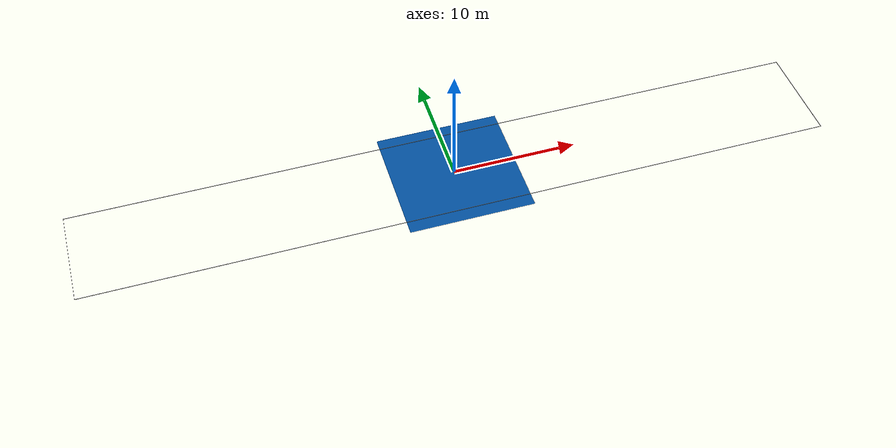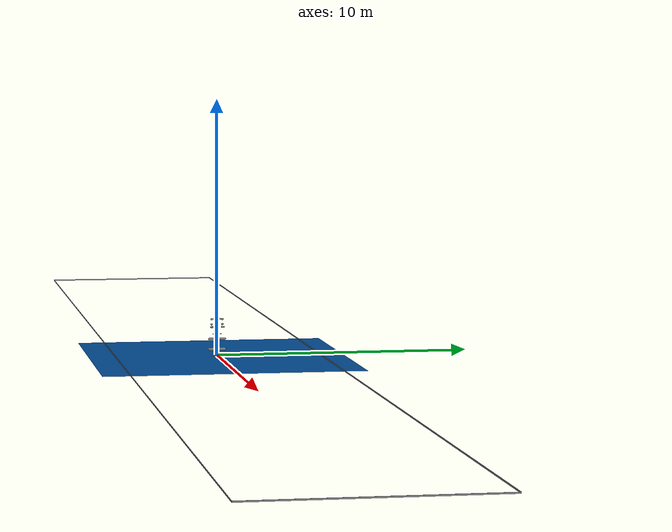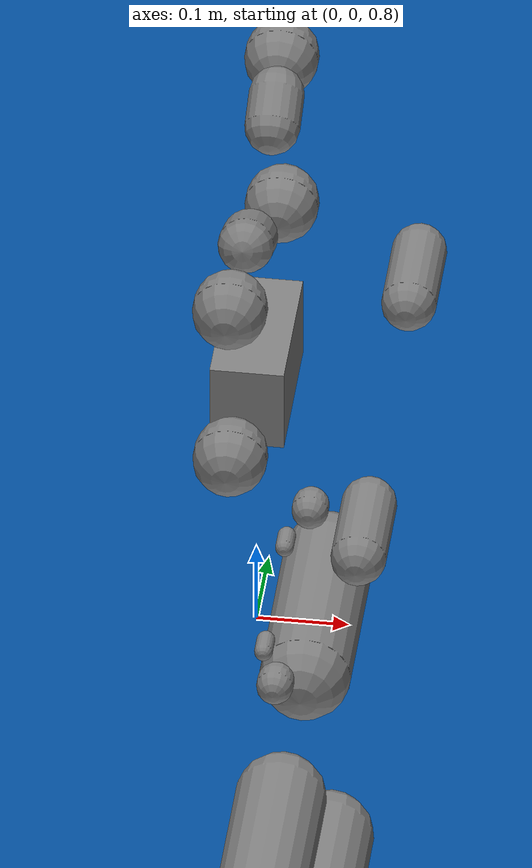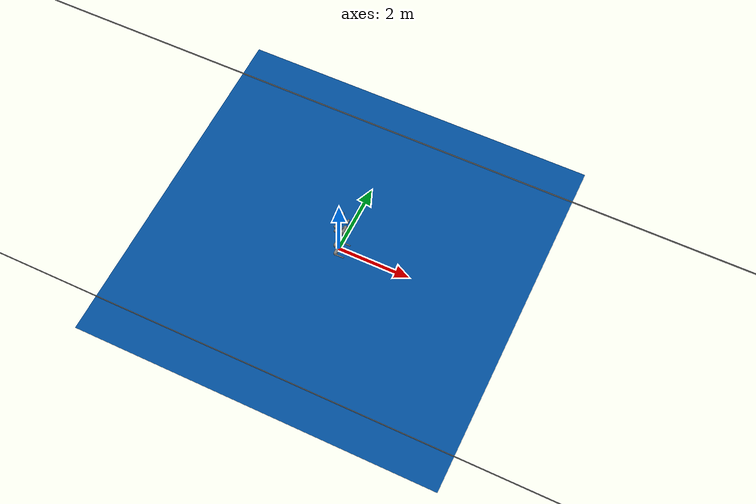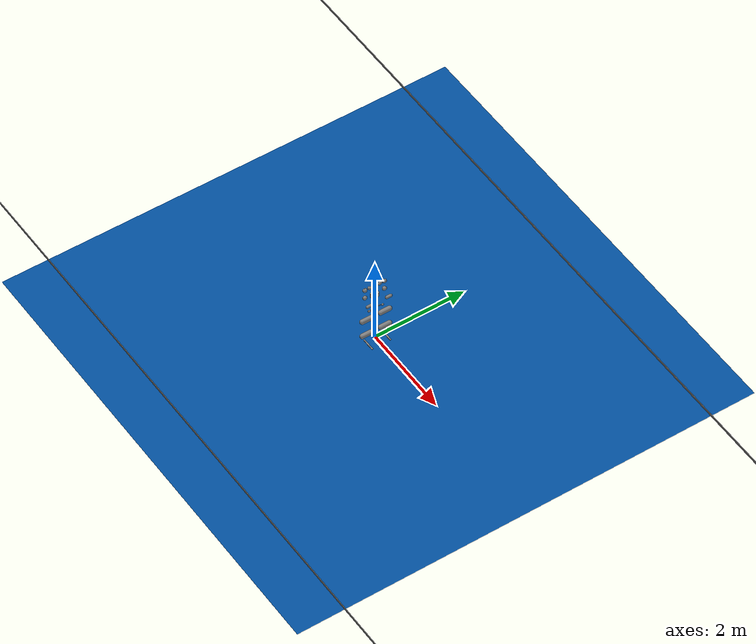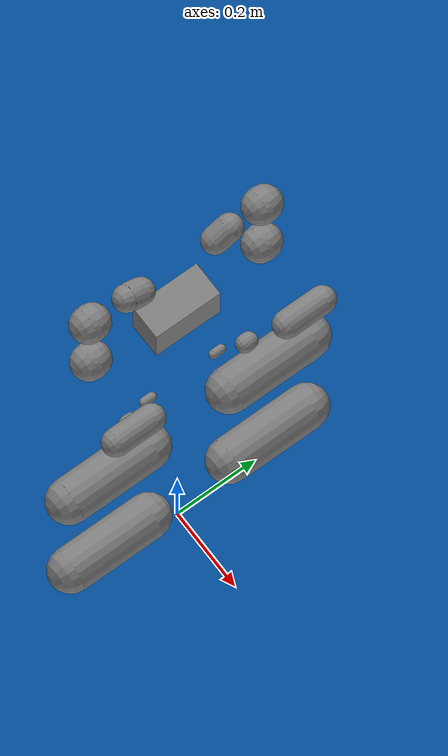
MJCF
<mujoco model="MuJoCo Model">
  <compiler angle="radian"/>

  <option gravity="0 0 -9.81" integrator="implicitfast">
    <flag multiccd="disable"/>
  </option>

  <worldbody>
    <geom name="ground_plane_0" size="5 5 5" type="plane" contype="2" conaffinity="2147483645" friction="2 0.005 0.0001" solref="0.02" rgba="0 0.3 0.6 1"/>
    <body name="pelvis" pos="0 0 1.01">
      <inertial pos="0 0 0" quat="0.497097 0.496809 -0.503132 0.502925" mass="5.983" diaginertia="0.0531565 0.0491678 0.00902583"/>
      <joint name="root_free" type="free"/>
      <geom name="shape_5_5" size="0.001" contype="4" conaffinity="2147483643" friction="2 0.005 0.0001" solref="0.02"/>
      <body name="left_hip_yaw_link" pos="0 0.0875 -0.1742">
        <inertial pos="0 0 0" quat="0.971162 0.000953788 0.238416 0.000760898" mass="2.965" diaginertia="0.00577918 0.00501769 0.00364268"/>
        <joint name="left_hip_yaw_joint" pos="0 0 0" axis="0 0 1" limited="true" range="-0.43 0.43" actuatorfrclimited="true" actuatorfrcrange="-200 200"/>
        <geom name="shape_6_6" size="0.01 0.01" pos="0.02 0 0" quat="0.707107 -0.707107 0 0" type="capsule" contype="4" conaffinity="2147483643" friction="2 0.005 0.0001" solref="0.02"/>
        <body name="left_hip_roll_link" pos="0.039468 0 0">
          <inertial pos="0 0 0" quat="0.532581 0.529488 0.465483 0.468322" mass="2.715" diaginertia="0.00438903 0.00347559 0.00305823"/>
          <joint name="left_hip_roll_joint" pos="0 0 0" axis="1 0 0" limited="true" range="-0.43 0.43" actuatorfrclimited="true" actuatorfrcrange="-200 200"/>
          <geom name="shape_7_7" size="0.02 0.005" pos="0 0.06 0" quat="0.707107 -0.707107 0 0" type="capsule" contype="4" conaffinity="2147483643" friction="2 0.005 0.0001" solref="0.02"/>
          <body name="left_hip_pitch_link" pos="0 0.11536 0">
            <inertial pos="0 0 0" quat="0.420074 0.00204459 -0.0653857 0.905129" mass="4.953" diaginertia="0.0968616 0.0962458 0.00678241"/>
            <joint name="left_hip_pitch_joint" pos="0 0 0" axis="0 1 0" limited="true" range="-3.13159 2.53" actuatorfrclimited="true" actuatorfrcrange="-200 200"/>
            <geom name="shape_8_8" size="0.05 0.1" pos="0 0 -0.2" quat="0.707107 -0.707107 0 0" type="capsule" contype="4" conaffinity="2147483643" friction="2 0.005 0.0001" solref="0.02"/>
            <body name="left_knee_link" pos="0 0 -0.4">
              <inertial pos="0 0 0" quat="0.609576 -0.0208168 -0.0265165 0.79201" mass="2.824" diaginertia="0.0245583 0.0238329 0.00314179"/>
              <joint name="left_knee_joint" pos="0 0 0" axis="0 1 0" limited="true" range="-0.26 2.05" actuatorfrclimited="true" actuatorfrcrange="-300 300"/>
              <geom name="shape_9_9" size="0.05 0.1" pos="0 0 -0.2" quat="0.707107 -0.707107 0 0" type="capsule" contype="4" conaffinity="2147483643" friction="2 0.005 0.0001" solref="0.02"/>
              <body name="left_ankle_link" pos="0 0 -0.4">
                <inertial pos="0 0 0" quat="0.482872 0.516561 0.516561 0.482872" mass="0.725" diaginertia="0.00329613 0.00315886 0.000223391"/>
                <joint name="left_ankle_joint" pos="0 0 0" axis="0 1 0" limited="true" range="-0.87 0.52" actuatorfrclimited="true" actuatorfrcrange="-40 40"/>
                <geom name="shape_10_10" size="0.14 0.015 0.012" pos="0.05 0 -0.05" type="box" contype="4" conaffinity="2147483643" friction="2 0.005 0.0001" solref="0.02"/>
              </body>
            </body>
          </body>
        </body>
      </body>
      <body name="right_hip_yaw_link" pos="0 -0.0875 -0.1742">
        <inertial pos="0 0 0" quat="0.971162 -0.000953788 0.238416 -0.000760898" mass="2.965" diaginertia="0.00577918 0.00501769 0.00364268"/>
        <joint name="right_hip_yaw_joint" pos="0 0 0" axis="0 0 1" limited="true" range="-0.43 0.43" actuatorfrclimited="true" actuatorfrcrange="-200 200"/>
        <geom name="shape_11_11" size="0.01 0.01" pos="0.02 0 0" quat="0.707107 -0.707107 0 0" type="capsule" contype="4" conaffinity="2147483643" friction="2 0.005 0.0001" solref="0.02"/>
        <body name="right_hip_roll_link" pos="0.039468 0 0">
          <inertial pos="0 0 0" quat="0.468322 0.465483 0.529488 0.532581" mass="2.715" diaginertia="0.00438903 0.00347559 0.00305823"/>
          <joint name="right_hip_roll_joint" pos="0 0 0" axis="1 0 0" limited="true" range="-0.43 0.43" actuatorfrclimited="true" actuatorfrcrange="-200 200"/>
          <geom name="shape_12_12" size="0.02 0.005" pos="0 -0.06 0" quat="0.707107 -0.707107 0 0" type="capsule" contype="4" conaffinity="2147483643" friction="2 0.005 0.0001" solref="0.02"/>
          <body name="right_hip_pitch_link" pos="0 -0.11536 0">
            <inertial pos="0 0 0" quat="0.905129 -0.0653857 0.00204459 0.420074" mass="4.953" diaginertia="0.0968616 0.0962458 0.00678241"/>
            <joint name="right_hip_pitch_joint" pos="0 0 0" axis="0 1 0" limited="true" range="-3.13159 2.53" actuatorfrclimited="true" actuatorfrcrange="-200 200"/>
            <geom name="shape_13_13" size="0.05 0.1" pos="0 0 -0.2" quat="0.707107 -0.707107 0 0" type="capsule" contype="4" conaffinity="2147483643" friction="2 0.005 0.0001" solref="0.02"/>
            <body name="right_knee_link" pos="0 0 -0.4">
              <inertial pos="0 0 0" quat="0.79201 -0.0265165 -0.0208168 0.609576" mass="2.824" diaginertia="0.0245583 0.0238329 0.00314179"/>
              <joint name="right_knee_joint" pos="0 0 0" axis="0 1 0" limited="true" range="-0.26 2.05" actuatorfrclimited="true" actuatorfrcrange="-300 300"/>
              <geom name="shape_14_14" size="0.05 0.1" pos="0 0 -0.2" quat="0.707107 -0.707107 0 0" type="capsule" contype="4" conaffinity="2147483643" friction="2 0.005 0.0001" solref="0.02"/>
              <body name="right_ankle_link" pos="0 0 -0.4">
                <inertial pos="0 0 0" quat="0.482872 0.516561 0.516561 0.482872" mass="0.725" diaginertia="0.00329613 0.00315886 0.000223391"/>
                <joint name="right_ankle_joint" pos="0 0 0" axis="0 1 0" limited="true" range="-0.87 0.52" actuatorfrclimited="true" actuatorfrcrange="-40 40"/>
                <geom name="shape_15_15" size="0.14 0.015 0.012" pos="0.05 0 -0.05" type="box" contype="4" conaffinity="2147483643" friction="2 0.005 0.0001" solref="0.02"/>
              </body>
            </body>
          </body>
        </body>
      </body>
      <body name="torso_link">
        <inertial pos="0 0 0" quat="0.999989 -0.00130808 -0.00282289 -0.00349105" mass="17.789" diaginertia="0.487315 0.409628 0.127837"/>
        <joint name="torso_joint" pos="0 0 0" axis="0 0 1" limited="true" range="-2.35 2.35" actuatorfrclimited="true" actuatorfrcrange="-200 200"/>
        <geom name="shape_16_16" size="0.04 0.08 0.05" pos="0 0 0.15" type="box" contype="4" conaffinity="2147483643" friction="2 0.005 0.0001" solref="0.02"/>
        <body name="left_shoulder_pitch_link" pos="0.0055 0.15535 0.42999" quat="0.976296 0.216438 0 0">
          <inertial pos="0 0 0" quat="0.814858 0.579236 -0.0201072 -0.00936488" mass="1.142" diaginertia="0.00129936 0.000987113 0.000858198"/>
          <joint name="left_shoulder_pitch_joint" pos="0 0 0" axis="0 1 -2.38419e-07" limited="true" range="-2.87 2.87" actuatorfrclimited="true" actuatorfrcrange="-40 40"/>
          <geom name="shape_17_17" size="0.03 0.02" pos="0 -0.05 0" quat="0.707107 -0.707107 0 0" type="capsule" contype="4" conaffinity="2147483643" friction="2 0.005 0.0001" solref="0.02"/>
          <body name="left_shoulder_roll_link" pos="-0.0055 0.0565 -0.0165" quat="0.976296 -0.216438 0 0">
            <inertial pos="0 0 0" quat="0.732491 0.00917179 0.0766656 0.676384" mass="0.852" diaginertia="0.00170388 0.00158256 0.00100336"/>
            <joint name="left_shoulder_roll_joint" pos="0 0 0" axis="1 0 0" limited="true" range="-0.34 3.11" actuatorfrclimited="true" actuatorfrcrange="-40 40"/>
            <geom name="shape_18_18" size="0.04 0.005" pos="0 0 -0.04" quat="0.707107 -0.707107 0 0" type="capsule" contype="4" conaffinity="2147483643" friction="2 0.005 0.0001" solref="0.02"/>
            <body name="left_shoulder_yaw_link" pos="0 0 -0.1343">
              <inertial pos="0 0 0" quat="0.703042 -0.0331229 -0.0473362 0.708798" mass="0.862" diaginertia="0.00408038 0.00370367 0.000622687"/>
              <joint name="left_shoulder_yaw_joint" pos="0 0 0" axis="0 0 1" limited="true" range="-1.3 3.13159" actuatorfrclimited="true" actuatorfrcrange="-18 18"/>
              <geom name="shape_19_19" size="0.04 0.005" pos="0 0 -0.11" quat="0.707107 -0.707107 0 0" type="capsule" contype="4" conaffinity="2147483643" friction="2 0.005 0.0001" solref="0.02"/>
              <body name="left_elbow_link" pos="0.0185 0 -0.198">
                <inertial pos="0 0 0" quat="0.0765227 0.720327 0.0853111 0.684102" mass="0.745" diaginertia="0.00601829 0.00600579 0.000408305"/>
                <joint name="left_elbow_joint" pos="0 0 0" axis="0 1 0" limited="true" range="-1.25 2.61" actuatorfrclimited="true" actuatorfrcrange="-18 18"/>
                <geom name="shape_20_20" size="0.03 0.045" pos="0.125 0 0" quat="0.707107 -0.707107 0 0" type="capsule" contype="4" conaffinity="2147483643" friction="2 0.005 0.0001" solref="0.02"/>
              </body>
            </body>
          </body>
        </body>
        <body name="right_shoulder_pitch_link" pos="0.0055 -0.15535 0.42999" quat="0.976296 -0.216438 0 0">
          <inertial pos="0 0 0" quat="0.579236 0.814858 0.00936488 0.0201072" mass="1.142" diaginertia="0.00129936 0.000987113 0.000858198"/>
          <joint name="right_shoulder_pitch_joint" pos="0 0 0" axis="0 1 2.38419e-07" limited="true" range="-2.87 2.87" actuatorfrclimited="true" actuatorfrcrange="-40 40"/>
          <geom name="shape_21_21" size="0.03 0.02" pos="0 0.05 0" quat="0.707107 -0.707107 0 0" type="capsule" contype="4" conaffinity="2147483643" friction="2 0.005 0.0001" solref="0.02"/>
          <body name="right_shoulder_roll_link" pos="-0.0055 -0.0565 -0.0165" quat="0.976296 0.216438 0 0">
            <inertial pos="0 0 0" quat="0.676384 0.0766656 0.00917179 0.732491" mass="0.852" diaginertia="0.00170388 0.00158256 0.00100336"/>
            <joint name="right_shoulder_roll_joint" pos="0 0 0" axis="1 0 0" limited="true" range="-3.11 0.34" actuatorfrclimited="true" actuatorfrcrange="-40 40"/>
            <geom name="shape_22_22" size="0.04 0.005" pos="0 0 -0.04" quat="0.707107 -0.707107 0 0" type="capsule" contype="4" conaffinity="2147483643" friction="2 0.005 0.0001" solref="0.02"/>
            <body name="right_shoulder_yaw_link" pos="0 0 -0.1343">
              <inertial pos="0 0 0" quat="0.708798 -0.0473362 -0.0331229 0.703042" mass="0.862" diaginertia="0.00408038 0.00370367 0.000622687"/>
              <joint name="right_shoulder_yaw_joint" pos="0 0 0" axis="0 0 1" limited="true" range="-3.13159 1.3" actuatorfrclimited="true" actuatorfrcrange="-18 18"/>
              <geom name="shape_23_23" size="0.04 0.005" pos="0 0 -0.11" quat="0.707107 -0.707107 0 0" type="capsule" contype="4" conaffinity="2147483643" friction="2 0.005 0.0001" solref="0.02"/>
              <body name="right_elbow_link" pos="0.0185 0 -0.198">
                <inertial pos="0 0 0" quat="-0.0765227 0.720327 -0.0853111 0.684102" mass="0.745" diaginertia="0.00601829 0.00600579 0.000408305"/>
                <joint name="right_elbow_joint" pos="0 0 0" axis="0 1 0" limited="true" range="-1.25 2.61" actuatorfrclimited="true" actuatorfrcrange="-18 18"/>
                <geom name="shape_24_24" size="0.03 0.045" pos="0.125 0 0" quat="0.707107 -0.707107 0 0" type="capsule" contype="4" conaffinity="2147483643" friction="2 0.005 0.0001" solref="0.02"/>
              </body>
            </body>
          </body>
        </body>
      </body>
    </body>
    <body name="static_body_0" pos="0 -4.005 0.025" mocap="true">
      <inertial pos="0 0 0" mass="1" diaginertia="0.1 0.1 0.1"/>
      <geom name="shape_1_1" size="30.01 0.005 0.025" type="box" contype="2" conaffinity="2147483645" friction="2 0.005 0.0001" solref="0.02"/>
    </body>
    <body name="static_body_1" pos="0 4.005 0.025" mocap="true">
      <inertial pos="0 0 0" mass="1" diaginertia="0.1 0.1 0.1"/>
      <geom name="shape_2_2" size="30.01 0.005 0.025" type="box" contype="8" conaffinity="2147483639" friction="2 0.005 0.0001" solref="0.02"/>
    </body>
    <body name="static_body_2" pos="-30.005 0 0.025" mocap="true">
      <inertial pos="0 0 0" mass="1" diaginertia="0.1 0.1 0.1"/>
      <geom name="shape_3_3" size="0.005 4 0.025" type="box" contype="16" conaffinity="2147483631" friction="2 0.005 0.0001" solref="0.02"/>
    </body>
    <body name="static_body_3" pos="30.005 0 0.025" mocap="true">
      <inertial pos="0 0 0" mass="1" diaginertia="0.1 0.1 0.1"/>
      <geom name="shape_4_4" size="0.005 4 0.025" type="box" contype="32" conaffinity="2147483615" friction="2 0.005 0.0001" solref="0.02"/>
    </body>
    <body name="static_body_4" mocap="true">
      <inertial pos="0 0 0" mass="1" diaginertia="0.1 0.1 0.1"/>
    </body>
  </worldbody>

  <contact>
    <exclude body1="pelvis" body2="left_hip_yaw_link"/>
    <exclude body1="pelvis" body2="left_hip_roll_link"/>
    <exclude body1="pelvis" body2="left_hip_pitch_link"/>
    <exclude body1="pelvis" body2="left_knee_link"/>
    <exclude body1="pelvis" body2="left_ankle_link"/>
    <exclude body1="pelvis" body2="right_hip_yaw_link"/>
    <exclude body1="pelvis" body2="right_hip_roll_link"/>
    <exclude body1="pelvis" body2="right_hip_pitch_link"/>
    <exclude body1="pelvis" body2="right_knee_link"/>
    <exclude body1="pelvis" body2="right_ankle_link"/>
    <exclude body1="pelvis" body2="torso_link"/>
    <exclude body1="pelvis" body2="left_shoulder_pitch_link"/>
    <exclude body1="pelvis" body2="left_shoulder_roll_link"/>
    <exclude body1="pelvis" body2="left_shoulder_yaw_link"/>
    <exclude body1="pelvis" body2="left_elbow_link"/>
    <exclude body1="pelvis" body2="right_shoulder_pitch_link"/>
    <exclude body1="pelvis" body2="right_shoulder_roll_link"/>
    <exclude body1="pelvis" body2="right_shoulder_yaw_link"/>
    <exclude body1="pelvis" body2="right_elbow_link"/>
    <exclude body1="pelvis" body2="static_body_4"/>
    <exclude body1="left_hip_yaw_link" body2="left_hip_roll_link"/>
    <exclude body1="left_hip_yaw_link" body2="left_hip_pitch_link"/>
    <exclude body1="left_hip_yaw_link" body2="left_knee_link"/>
    <exclude body1="left_hip_yaw_link" body2="left_ankle_link"/>
    <exclude body1="left_hip_yaw_link" body2="right_hip_yaw_link"/>
    <exclude body1="left_hip_yaw_link" body2="right_hip_roll_link"/>
    <exclude body1="left_hip_yaw_link" body2="right_hip_pitch_link"/>
    <exclude body1="left_hip_yaw_link" body2="right_knee_link"/>
    <exclude body1="left_hip_yaw_link" body2="right_ankle_link"/>
    <exclude body1="left_hip_yaw_link" body2="torso_link"/>
    <exclude body1="left_hip_yaw_link" body2="left_shoulder_pitch_link"/>
    <exclude body1="left_hip_yaw_link" body2="left_shoulder_roll_link"/>
    <exclude body1="left_hip_yaw_link" body2="left_shoulder_yaw_link"/>
    <exclude body1="left_hip_yaw_link" body2="left_elbow_link"/>
    <exclude body1="left_hip_yaw_link" body2="right_shoulder_pitch_link"/>
    <exclude body1="left_hip_yaw_link" body2="right_shoulder_roll_link"/>
    <exclude body1="left_hip_yaw_link" body2="right_shoulder_yaw_link"/>
    <exclude body1="left_hip_yaw_link" body2="right_elbow_link"/>
    <exclude body1="left_hip_yaw_link" body2="static_body_4"/>
    <exclude body1="left_hip_roll_link" body2="left_hip_pitch_link"/>
    <exclude body1="left_hip_roll_link" body2="left_knee_link"/>
    <exclude body1="left_hip_roll_link" body2="left_ankle_link"/>
    <exclude body1="left_hip_roll_link" body2="right_hip_yaw_link"/>
    <exclude body1="left_hip_roll_link" body2="right_hip_roll_link"/>
    <exclude body1="left_hip_roll_link" body2="right_hip_pitch_link"/>
    <exclude body1="left_hip_roll_link" body2="right_knee_link"/>
    <exclude body1="left_hip_roll_link" body2="right_ankle_link"/>
    <exclude body1="left_hip_roll_link" body2="torso_link"/>
    <exclude body1="left_hip_roll_link" body2="left_shoulder_pitch_link"/>
    <exclude body1="left_hip_roll_link" body2="left_shoulder_roll_link"/>
    <exclude body1="left_hip_roll_link" body2="left_shoulder_yaw_link"/>
    <exclude body1="left_hip_roll_link" body2="left_elbow_link"/>
    <exclude body1="left_hip_roll_link" body2="right_shoulder_pitch_link"/>
    <exclude body1="left_hip_roll_link" body2="right_shoulder_roll_link"/>
    <exclude body1="left_hip_roll_link" body2="right_shoulder_yaw_link"/>
    <exclude body1="left_hip_roll_link" body2="right_elbow_link"/>
    <exclude body1="left_hip_roll_link" body2="static_body_4"/>
    <exclude body1="left_hip_pitch_link" body2="left_knee_link"/>
    <exclude body1="left_hip_pitch_link" body2="left_ankle_link"/>
    <exclude body1="left_hip_pitch_link" body2="right_hip_yaw_link"/>
    <exclude body1="left_hip_pitch_link" body2="right_hip_roll_link"/>
    <exclude body1="left_hip_pitch_link" body2="right_hip_pitch_link"/>
    <exclude body1="left_hip_pitch_link" body2="right_knee_link"/>
    <exclude body1="left_hip_pitch_link" body2="right_ankle_link"/>
    <exclude body1="left_hip_pitch_link" body2="torso_link"/>
    <exclude body1="left_hip_pitch_link" body2="left_shoulder_pitch_link"/>
    <exclude body1="left_hip_pitch_link" body2="left_shoulder_roll_link"/>
    <exclude body1="left_hip_pitch_link" body2="left_shoulder_yaw_link"/>
    <exclude body1="left_hip_pitch_link" body2="left_elbow_link"/>
    <exclude body1="left_hip_pitch_link" body2="right_shoulder_pitch_link"/>
    <exclude body1="left_hip_pitch_link" body2="right_shoulder_roll_link"/>
    <exclude body1="left_hip_pitch_link" body2="right_shoulder_yaw_link"/>
    <exclude body1="left_hip_pitch_link" body2="right_elbow_link"/>
    <exclude body1="left_hip_pitch_link" body2="static_body_4"/>
    <exclude body1="left_knee_link" body2="left_ankle_link"/>
    <exclude body1="left_knee_link" body2="right_hip_yaw_link"/>
    <exclude body1="left_knee_link" body2="right_hip_roll_link"/>
    <exclude body1="left_knee_link" body2="right_hip_pitch_link"/>
    <exclude body1="left_knee_link" body2="right_knee_link"/>
    <exclude body1="left_knee_link" body2="right_ankle_link"/>
    <exclude body1="left_knee_link" body2="torso_link"/>
    <exclude body1="left_knee_link" body2="left_shoulder_pitch_link"/>
    <exclude body1="left_knee_link" body2="left_shoulder_roll_link"/>
    <exclude body1="left_knee_link" body2="left_shoulder_yaw_link"/>
    <exclude body1="left_knee_link" body2="left_elbow_link"/>
    <exclude body1="left_knee_link" body2="right_shoulder_pitch_link"/>
    <exclude body1="left_knee_link" body2="right_shoulder_roll_link"/>
    <exclude body1="left_knee_link" body2="right_shoulder_yaw_link"/>
    <exclude body1="left_knee_link" body2="right_elbow_link"/>
    <exclude body1="left_knee_link" body2="static_body_4"/>
    <exclude body1="left_ankle_link" body2="right_hip_yaw_link"/>
    <exclude body1="left_ankle_link" body2="right_hip_roll_link"/>
    <exclude body1="left_ankle_link" body2="right_hip_pitch_link"/>
    <exclude body1="left_ankle_link" body2="right_knee_link"/>
    <exclude body1="left_ankle_link" body2="right_ankle_link"/>
    <exclude body1="left_ankle_link" body2="torso_link"/>
    <exclude body1="left_ankle_link" body2="left_shoulder_pitch_link"/>
    <exclude body1="left_ankle_link" body2="left_shoulder_roll_link"/>
    <exclude body1="left_ankle_link" body2="left_shoulder_yaw_link"/>
    <exclude body1="left_ankle_link" body2="left_elbow_link"/>
    <exclude body1="left_ankle_link" body2="right_shoulder_pitch_link"/>
    <exclude body1="left_ankle_link" body2="right_shoulder_roll_link"/>
    <exclude body1="left_ankle_link" body2="right_shoulder_yaw_link"/>
    <exclude body1="left_ankle_link" body2="right_elbow_link"/>
    <exclude body1="left_ankle_link" body2="static_body_4"/>
    <exclude body1="right_hip_yaw_link" body2="right_hip_roll_link"/>
    <exclude body1="right_hip_yaw_link" body2="right_hip_pitch_link"/>
    <exclude body1="right_hip_yaw_link" body2="right_knee_link"/>
    <exclude body1="right_hip_yaw_link" body2="right_ankle_link"/>
    <exclude body1="right_hip_yaw_link" body2="torso_link"/>
    <exclude body1="right_hip_yaw_link" body2="left_shoulder_pitch_link"/>
    <exclude body1="right_hip_yaw_link" body2="left_shoulder_roll_link"/>
    <exclude body1="right_hip_yaw_link" body2="left_shoulder_yaw_link"/>
    <exclude body1="right_hip_yaw_link" body2="left_elbow_link"/>
    <exclude body1="right_hip_yaw_link" body2="right_shoulder_pitch_link"/>
    <exclude body1="right_hip_yaw_link" body2="right_shoulder_roll_link"/>
    <exclude body1="right_hip_yaw_link" body2="right_shoulder_yaw_link"/>
    <exclude body1="right_hip_yaw_link" body2="right_elbow_link"/>
    <exclude body1="right_hip_yaw_link" body2="static_body_4"/>
    <exclude body1="right_hip_roll_link" body2="right_hip_pitch_link"/>
    <exclude body1="right_hip_roll_link" body2="right_knee_link"/>
    <exclude body1="right_hip_roll_link" body2="right_ankle_link"/>
    <exclude body1="right_hip_roll_link" body2="torso_link"/>
    <exclude body1="right_hip_roll_link" body2="left_shoulder_pitch_link"/>
    <exclude body1="right_hip_roll_link" body2="left_shoulder_roll_link"/>
    <exclude body1="right_hip_roll_link" body2="left_shoulder_yaw_link"/>
    <exclude body1="right_hip_roll_link" body2="left_elbow_link"/>
    <exclude body1="right_hip_roll_link" body2="right_shoulder_pitch_link"/>
    <exclude body1="right_hip_roll_link" body2="right_shoulder_roll_link"/>
    <exclude body1="right_hip_roll_link" body2="right_shoulder_yaw_link"/>
    <exclude body1="right_hip_roll_link" body2="right_elbow_link"/>
    <exclude body1="right_hip_roll_link" body2="static_body_4"/>
    <exclude body1="right_hip_pitch_link" body2="right_knee_link"/>
    <exclude body1="right_hip_pitch_link" body2="right_ankle_link"/>
    <exclude body1="right_hip_pitch_link" body2="torso_link"/>
    <exclude body1="right_hip_pitch_link" body2="left_shoulder_pitch_link"/>
    <exclude body1="right_hip_pitch_link" body2="left_shoulder_roll_link"/>
    <exclude body1="right_hip_pitch_link" body2="left_shoulder_yaw_link"/>
    <exclude body1="right_hip_pitch_link" body2="left_elbow_link"/>
    <exclude body1="right_hip_pitch_link" body2="right_shoulder_pitch_link"/>
    <exclude body1="right_hip_pitch_link" body2="right_shoulder_roll_link"/>
    <exclude body1="right_hip_pitch_link" body2="right_shoulder_yaw_link"/>
    <exclude body1="right_hip_pitch_link" body2="right_elbow_link"/>
    <exclude body1="right_hip_pitch_link" body2="static_body_4"/>
    <exclude body1="right_knee_link" body2="right_ankle_link"/>
    <exclude body1="right_knee_link" body2="torso_link"/>
    <exclude body1="right_knee_link" body2="left_shoulder_pitch_link"/>
    <exclude body1="right_knee_link" body2="left_shoulder_roll_link"/>
    <exclude body1="right_knee_link" body2="left_shoulder_yaw_link"/>
    <exclude body1="right_knee_link" body2="left_elbow_link"/>
    <exclude body1="right_knee_link" body2="right_shoulder_pitch_link"/>
    <exclude body1="right_knee_link" body2="right_shoulder_roll_link"/>
    <exclude body1="right_knee_link" body2="right_shoulder_yaw_link"/>
    <exclude body1="right_knee_link" body2="right_elbow_link"/>
    <exclude body1="right_knee_link" body2="static_body_4"/>
    <exclude body1="right_ankle_link" body2="torso_link"/>
    <exclude body1="right_ankle_link" body2="left_shoulder_pitch_link"/>
    <exclude body1="right_ankle_link" body2="left_shoulder_roll_link"/>
    <exclude body1="right_ankle_link" body2="left_shoulder_yaw_link"/>
    <exclude body1="right_ankle_link" body2="left_elbow_link"/>
    <exclude body1="right_ankle_link" body2="right_shoulder_pitch_link"/>
    <exclude body1="right_ankle_link" body2="right_shoulder_roll_link"/>
    <exclude body1="right_ankle_link" body2="right_shoulder_yaw_link"/>
    <exclude body1="right_ankle_link" body2="right_elbow_link"/>
    <exclude body1="right_ankle_link" body2="static_body_4"/>
    <exclude body1="torso_link" body2="left_shoulder_pitch_link"/>
    <exclude body1="torso_link" body2="left_shoulder_roll_link"/>
    <exclude body1="torso_link" body2="left_shoulder_yaw_link"/>
    <exclude body1="torso_link" body2="left_elbow_link"/>
    <exclude body1="torso_link" body2="right_shoulder_pitch_link"/>
    <exclude body1="torso_link" body2="right_shoulder_roll_link"/>
    <exclude body1="torso_link" body2="right_shoulder_yaw_link"/>
    <exclude body1="torso_link" body2="right_elbow_link"/>
    <exclude body1="torso_link" body2="static_body_4"/>
    <exclude body1="left_shoulder_pitch_link" body2="left_shoulder_roll_link"/>
    <exclude body1="left_shoulder_pitch_link" body2="left_shoulder_yaw_link"/>
    <exclude body1="left_shoulder_pitch_link" body2="left_elbow_link"/>
    <exclude body1="left_shoulder_pitch_link" body2="right_shoulder_pitch_link"/>
    <exclude body1="left_shoulder_pitch_link" body2="right_shoulder_roll_link"/>
    <exclude body1="left_shoulder_pitch_link" body2="right_shoulder_yaw_link"/>
    <exclude body1="left_shoulder_pitch_link" body2="right_elbow_link"/>
    <exclude body1="left_shoulder_pitch_link" body2="static_body_4"/>
    <exclude body1="left_shoulder_roll_link" body2="left_shoulder_yaw_link"/>
    <exclude body1="left_shoulder_roll_link" body2="left_elbow_link"/>
    <exclude body1="left_shoulder_roll_link" body2="right_shoulder_pitch_link"/>
    <exclude body1="left_shoulder_roll_link" body2="right_shoulder_roll_link"/>
    <exclude body1="left_shoulder_roll_link" body2="right_shoulder_yaw_link"/>
    <exclude body1="left_shoulder_roll_link" body2="right_elbow_link"/>
    <exclude body1="left_shoulder_roll_link" body2="static_body_4"/>
    <exclude body1="left_shoulder_yaw_link" body2="left_elbow_link"/>
    <exclude body1="left_shoulder_yaw_link" body2="right_shoulder_pitch_link"/>
    <exclude body1="left_shoulder_yaw_link" body2="right_shoulder_roll_link"/>
    <exclude body1="left_shoulder_yaw_link" body2="right_shoulder_yaw_link"/>
    <exclude body1="left_shoulder_yaw_link" body2="right_elbow_link"/>
    <exclude body1="left_shoulder_yaw_link" body2="static_body_4"/>
    <exclude body1="left_elbow_link" body2="right_shoulder_pitch_link"/>
    <exclude body1="left_elbow_link" body2="right_shoulder_roll_link"/>
    <exclude body1="left_elbow_link" body2="right_shoulder_yaw_link"/>
    <exclude body1="left_elbow_link" body2="right_elbow_link"/>
    <exclude body1="left_elbow_link" body2="static_body_4"/>
    <exclude body1="right_shoulder_pitch_link" body2="right_shoulder_roll_link"/>
    <exclude body1="right_shoulder_pitch_link" body2="right_shoulder_yaw_link"/>
    <exclude body1="right_shoulder_pitch_link" body2="right_elbow_link"/>
    <exclude body1="right_shoulder_pitch_link" body2="static_body_4"/>
    <exclude body1="right_shoulder_roll_link" body2="right_shoulder_yaw_link"/>
    <exclude body1="right_shoulder_roll_link" body2="right_elbow_link"/>
    <exclude body1="right_shoulder_roll_link" body2="static_body_4"/>
    <exclude body1="right_shoulder_yaw_link" body2="right_elbow_link"/>
    <exclude body1="right_shoulder_yaw_link" body2="static_body_4"/>
    <exclude body1="right_elbow_link" body2="static_body_4"/>
    <exclude body1="static_body_0" body2="static_body_4"/>
    <exclude body1="static_body_1" body2="static_body_4"/>
    <exclude body1="static_body_2" body2="static_body_4"/>
    <exclude body1="static_body_3" body2="static_body_4"/>
  </contact>

  <actuator>
    <general name="left_hip_yaw_joint_pos" joint="left_hip_yaw_joint" biastype="affine" gainprm="800" biasprm="0 -800"/>
    <general name="left_hip_yaw_joint_vel" joint="left_hip_yaw_joint" biastype="affine" gainprm="70" biasprm="0 0 -70"/>
    <general name="left_hip_roll_joint_pos" joint="left_hip_roll_joint" biastype="affine" gainprm="800" biasprm="0 -800"/>
    <general name="left_hip_roll_joint_vel" joint="left_hip_roll_joint" biastype="affine" gainprm="70" biasprm="0 0 -70"/>
    <general name="left_hip_pitch_joint_pos" joint="left_hip_pitch_joint" biastype="affine" gainprm="800" biasprm="0 -800"/>
    <general name="left_hip_pitch_joint_vel" joint="left_hip_pitch_joint" biastype="affine" gainprm="70" biasprm="0 0 -70"/>
    <general name="left_knee_joint_pos" joint="left_knee_joint" biastype="affine" gainprm="800" biasprm="0 -800"/>
    <general name="left_knee_joint_vel" joint="left_knee_joint" biastype="affine" gainprm="70" biasprm="0 0 -70"/>
    <general name="left_ankle_joint_pos" joint="left_ankle_joint" biastype="affine" gainprm="800" biasprm="0 -800"/>
    <general name="left_ankle_joint_vel" joint="left_ankle_joint" biastype="affine" gainprm="70" biasprm="0 0 -70"/>
    <general name="right_hip_yaw_joint_pos" joint="right_hip_yaw_joint" biastype="affine" gainprm="800" biasprm="0 -800"/>
    <general name="right_hip_yaw_joint_vel" joint="right_hip_yaw_joint" biastype="affine" gainprm="70" biasprm="0 0 -70"/>
    <general name="right_hip_roll_joint_pos" joint="right_hip_roll_joint" biastype="affine" gainprm="800" biasprm="0 -800"/>
    <general name="right_hip_roll_joint_vel" joint="right_hip_roll_joint" biastype="affine" gainprm="70" biasprm="0 0 -70"/>
    <general name="right_hip_pitch_joint_pos" joint="right_hip_pitch_joint" biastype="affine" gainprm="800" biasprm="0 -800"/>
    <general name="right_hip_pitch_joint_vel" joint="right_hip_pitch_joint" biastype="affine" gainprm="70" biasprm="0 0 -70"/>
    <general name="right_knee_joint_pos" joint="right_knee_joint" biastype="affine" gainprm="800" biasprm="0 -800"/>
    <general name="right_knee_joint_vel" joint="right_knee_joint" biastype="affine" gainprm="70" biasprm="0 0 -70"/>
    <general name="right_ankle_joint_pos" joint="right_ankle_joint" biastype="affine" gainprm="800" biasprm="0 -800"/>
    <general name="right_ankle_joint_vel" joint="right_ankle_joint" biastype="affine" gainprm="70" biasprm="0 0 -70"/>
    <general name="torso_joint_pos" joint="torso_joint" biastype="affine" gainprm="800" biasprm="0 -800"/>
    <general name="torso_joint_vel" joint="torso_joint" biastype="affine" gainprm="70" biasprm="0 0 -70"/>
    <general name="left_shoulder_pitch_joint_pos" joint="left_shoulder_pitch_joint" biastype="affine" gainprm="800" biasprm="0 -800"/>
    <general name="left_shoulder_pitch_joint_vel" joint="left_shoulder_pitch_joint" biastype="affine" gainprm="70" biasprm="0 0 -70"/>
    <general name="left_shoulder_roll_joint_pos" joint="left_shoulder_roll_joint" biastype="affine" gainprm="800" biasprm="0 -800"/>
    <general name="left_shoulder_roll_joint_vel" joint="left_shoulder_roll_joint" biastype="affine" gainprm="70" biasprm="0 0 -70"/>
    <general name="left_shoulder_yaw_joint_pos" joint="left_shoulder_yaw_joint" biastype="affine" gainprm="800" biasprm="0 -800"/>
    <general name="left_shoulder_yaw_joint_vel" joint="left_shoulder_yaw_joint" biastype="affine" gainprm="70" biasprm="0 0 -70"/>
    <general name="left_elbow_joint_pos" joint="left_elbow_joint" biastype="affine" gainprm="800" biasprm="0 -800"/>
    <general name="left_elbow_joint_vel" joint="left_elbow_joint" biastype="affine" gainprm="70" biasprm="0 0 -70"/>
    <general name="right_shoulder_pitch_joint_pos" joint="right_shoulder_pitch_joint" biastype="affine" gainprm="800" biasprm="0 -800"/>
    <general name="right_shoulder_pitch_joint_vel" joint="right_shoulder_pitch_joint" biastype="affine" gainprm="70" biasprm="0 0 -70"/>
    <general name="right_shoulder_roll_joint_pos" joint="right_shoulder_roll_joint" biastype="affine" gainprm="800" biasprm="0 -800"/>
    <general name="right_shoulder_roll_joint_vel" joint="right_shoulder_roll_joint" biastype="affine" gainprm="70" biasprm="0 0 -70"/>
    <general name="right_shoulder_yaw_joint_pos" joint="right_shoulder_yaw_joint" biastype="affine" gainprm="800" biasprm="0 -800"/>
    <general name="right_shoulder_yaw_joint_vel" joint="right_shoulder_yaw_joint" biastype="affine" gainprm="70" biasprm="0 0 -70"/>
    <general name="right_elbow_joint_pos" joint="right_elbow_joint" biastype="affine" gainprm="800" biasprm="0 -800"/>
    <general name="right_elbow_joint_vel" joint="right_elbow_joint" biastype="affine" gainprm="70" biasprm="0 0 -70"/>
  </actuator>
</mujoco>
